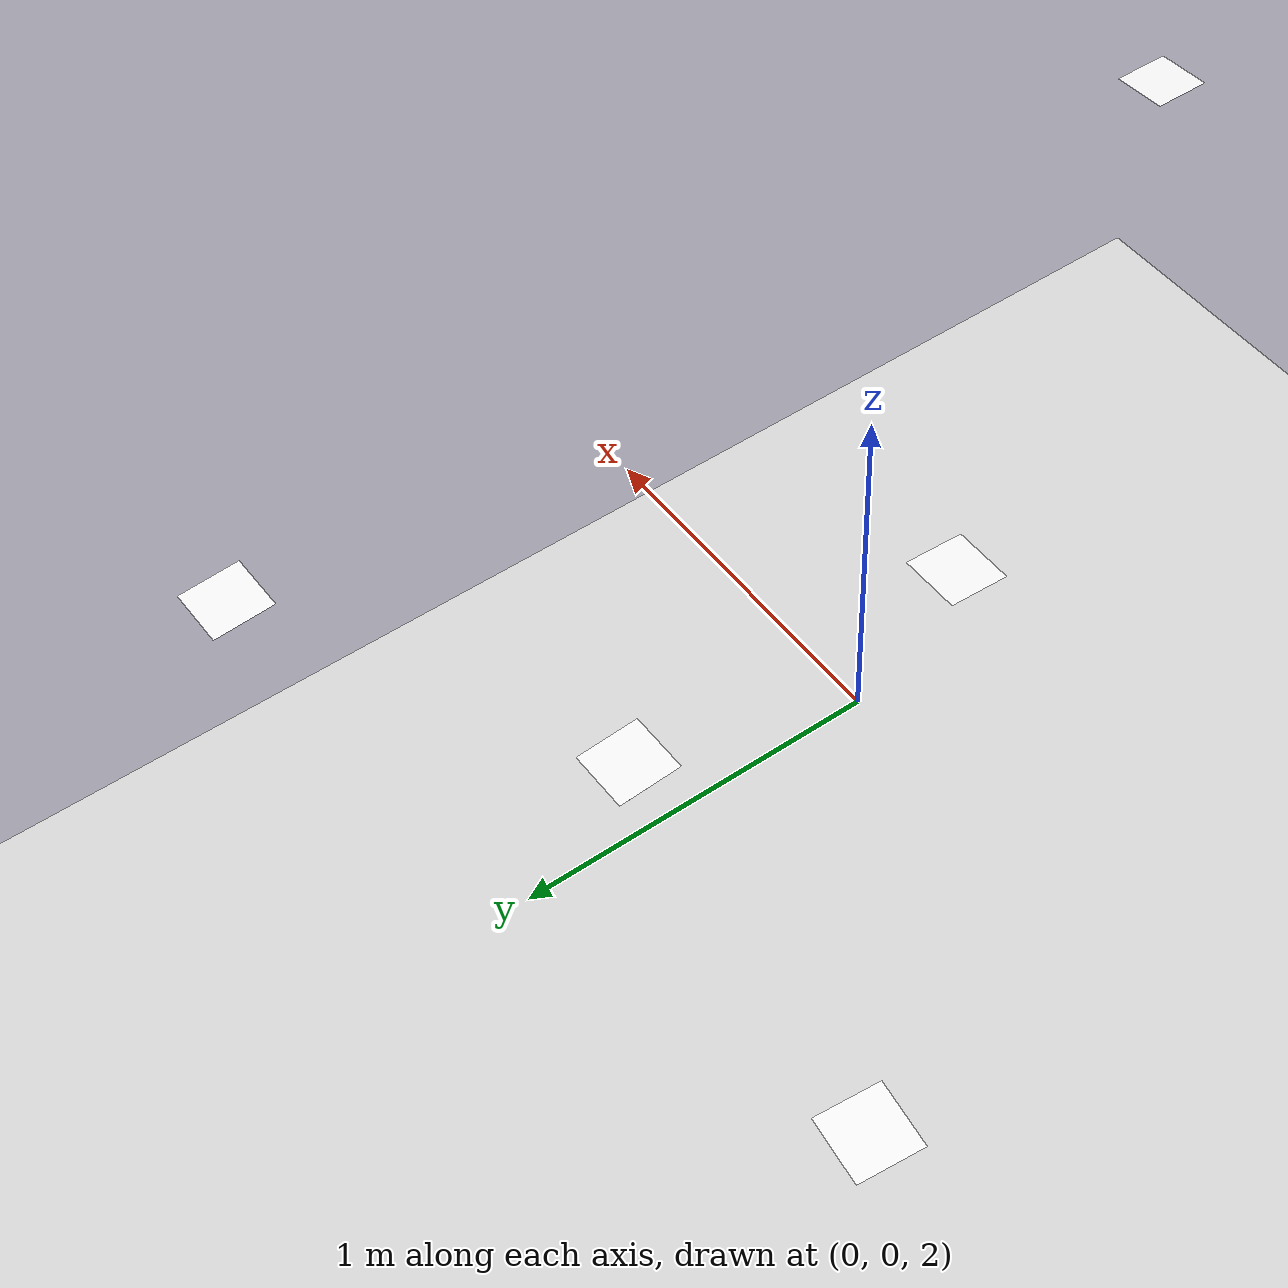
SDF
<?xml version="1.0"?>

<sdf version="1.6">
  <world name="default">

    <!-- Tweak to run at higher or lower speeds -->
    <physics name="normal" type="ode">
      <real_time_update_rate>1000</real_time_update_rate>
      <max_step_size>0.001</max_step_size>
    </physics>

    <!-- Ground plane -->
    <include>
      <uri>model://ground_plane</uri>
    </include>

    <!-- Lighting -->
    <include>
      <uri>model://sun</uri>
    </include>

    <!-- ArUco markers -->
    <model name="marker0">
      <include>
        <static>true</static>
        <uri>model://aruco_visual_marker_0</uri>
      </include>
      <pose>0 -1.6 1.5 -1.57 -1.57 0</pose>
    </model>
    <model name="marker1">
      <include>
        <static>true</static>
        <uri>model://aruco_visual_marker_1</uri>
      </include>
      <pose>0.5 2.5 1.5 0 -1.57 1.57</pose>
    </model>
    <model name="marker2">
      <include>
        <static>true</static>
        <uri>model://aruco_visual_marker_2</uri>
      </include>
      <pose>-2.5 0 1.5 0 -1.57 3.04</pose>
    </model>
    <model name="marker3">
      <include>
        <static>true</static>
        <uri>model://aruco_visual_marker_3</uri>
      </include>
      <pose>-1.5 2 1.5 0 -1.57 1.57</pose>
    </model>
    <model name="marker4">
      <include>
        <static>true</static>
        <uri>model://aruco_visual_marker_4</uri>
      </include>
      <pose>2.4 0 1.5 0 -1.57 0</pose>
    </model>
  </world>
</sdf>

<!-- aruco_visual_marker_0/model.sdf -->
<sdf version='1.5'>
  <model name='aruco_visual_marker_0'>

    <link name='marker'>
      <pose frame=''>0.8 0 1.3 0 -1.5 0</pose>
      <visual name='visual'>
        <geometry>
          <box>
            <size>0.1778 0.1778 1e-5</size>
          </box>
        </geometry>
        <material>
          <script>
            <uri>model://aruco_visual_marker_0/materials/scripts</uri>
            <uri>model://aruco_visual_marker_0/materials/textures</uri>
            <name>ArucoVisualMarker0/Marker</name>
          </script>
          <ambient>1 1 1 1</ambient>
          <diffuse>1 1 1 1</diffuse>
          <specular>0 0 0 1</specular>
          <emissive>1 1 1 0</emissive>
          <shader type='vertex'>
            <normal_map>__default__</normal_map>
          </shader>
        </material>
        <pose frame=''>0 0 0 0 -0 0</pose>
        <cast_shadows>1</cast_shadows>
        <transparency>0</transparency>
      </visual>
      <collision name='collision'>
        <laser_retro>0</laser_retro>
        <max_contacts>10</max_contacts>
        <pose frame=''>0 0 0 0 -0 0</pose>
        <geometry>
          <box>
            <size>0.1778 0.1778 1e-05</size>
          </box>
        </geometry>
      </collision>
    </link>

    <link name='marker_pad'>
      <pose frame='marker'>0 0 -1e-5 0 -0 0</pose>
      <visual name='visual'>
        <geometry>
          <box>
            <size>0.1778 0.1778 1e-5</size>
          </box>
        </geometry>
        <material>
          <lighting>1</lighting>
          <script>
            <uri>file://media/materials/scripts/gazebo.material</uri>
            <name>Gazebo/White</name>
          </script>
          <ambient>0.3 0.3 0.3 1</ambient>
          <diffuse>0.7 0.7 0.7 1</diffuse>
          <specular>0.01 0.01 0.01 1</specular>
          <emissive>1 1 1 0</emissive>
          <shader type='vertex'>
            <normal_map>__default__</normal_map>
          </shader>
        </material>
        <cast_shadows>1</cast_shadows>
        <transparency>0</transparency>
      </visual>
      <collision name='collision'>
        <laser_retro>0</laser_retro>
        <max_contacts>10</max_contacts>
        <pose frame=''>0 0 0 0 -0 0</pose>
        <geometry>
          <box>
            <size>0.1778 0.1778 1e-5</size>
          </box>
        </geometry>
      </collision>
    </link>

    <joint name='marker_JOINT_marker_pad' type='revolute'>
      <parent>marker</parent>
      <child>marker_pad</child>
      <pose frame=''>0 0 0 0 -0 0</pose>
      <axis>
        <xyz>0 0 1</xyz>
        <limit>
          <upper>0</upper>
          <lower>0</lower>
        </limit>
      </axis>
    </joint>

    <static>1</static>
    <allow_auto_disable>1</allow_auto_disable>

  </model>
</sdf>

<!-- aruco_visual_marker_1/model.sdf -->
<sdf version='1.5'>
  <model name='aruco_visual_marker_1'>

    <link name='marker'>
      <pose frame=''>0.8 -0.5 1.3 0 -1.5 0</pose>
      <visual name='visual'>
        <geometry>
          <box>
            <size>0.1778 0.1778 1e-5</size>
          </box>
        </geometry>
        <material>
          <script>
            <uri>model://aruco_visual_marker_1/materials/scripts</uri>
            <uri>model://aruco_visual_marker_1/materials/textures</uri>
            <name>ArucoVisualMarker1/Marker</name>
          </script>
          <ambient>1 1 1 1</ambient>
          <diffuse>1 1 1 1</diffuse>
          <specular>0 0 0 1</specular>
          <emissive>1 1 1 0</emissive>
          <shader type='vertex'>
            <normal_map>__default__</normal_map>
          </shader>
        </material>
        <pose frame=''>0 0 0 0 -0 0</pose>
        <cast_shadows>1</cast_shadows>
        <transparency>0</transparency>
      </visual>
      <collision name='collision'>
        <laser_retro>0</laser_retro>
        <max_contacts>10</max_contacts>
        <pose frame=''>0 0 0 0 -0 0</pose>
        <geometry>
          <box>
            <size>0.1778 0.1778 1e-05</size>
          </box>
        </geometry>
      </collision>
    </link>

    <link name='marker_pad'>
      <pose frame='marker'>0 0 -1e-5 0 -0 0</pose>
      <visual name='visual'>
        <geometry>
          <box>
            <size>0.1778 0.1778 1e-5</size>
          </box>
        </geometry>
        <material>
          <lighting>1</lighting>
          <script>
            <uri>file://media/materials/scripts/gazebo.material</uri>
            <name>Gazebo/White</name>
          </script>
          <ambient>0.3 0.3 0.3 1</ambient>
          <diffuse>0.7 0.7 0.7 1</diffuse>
          <specular>0.01 0.01 0.01 1</specular>
          <emissive>1 1 1 0</emissive>
          <shader type='vertex'>
            <normal_map>__default__</normal_map>
          </shader>
        </material>
        <cast_shadows>1</cast_shadows>
        <transparency>0</transparency>
      </visual>
      <collision name='collision'>
        <laser_retro>0</laser_retro>
        <max_contacts>10</max_contacts>
        <pose frame=''>0 0 0 0 -0 0</pose>
        <geometry>
          <box>
            <size>0.1778 0.1778 1e-5</size>
          </box>
        </geometry>
      </collision>
    </link>

    <joint name='marker_JOINT_marker_pad' type='revolute'>
      <parent>marker</parent>
      <child>marker_pad</child>
      <pose frame=''>0 0 0 0 -0 0</pose>
      <axis>
        <xyz>0 0 1</xyz>
        <limit>
          <upper>0</upper>
          <lower>0</lower>
        </limit>
      </axis>
    </joint>

    <static>1</static>
    <allow_auto_disable>1</allow_auto_disable>

  </model>
</sdf>

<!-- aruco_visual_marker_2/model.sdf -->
<sdf version='1.5'>
  <model name='aruco_visual_marker_2'>

    <link name='marker'>
      <pose frame=''>0.8 -1 1.3 0 -1.5 0</pose>
      <visual name='visual'>
        <geometry>
          <box>
            <size>0.1778 0.1778 1e-5</size>
          </box>
        </geometry>
        <material>
          <script>
            <uri>model://aruco_visual_marker_2/materials/scripts</uri>
            <uri>model://aruco_visual_marker_2/materials/textures</uri>
            <name>ArucoVisualMarker2/Marker</name>
          </script>
          <ambient>1 1 1 1</ambient>
          <diffuse>1 1 1 1</diffuse>
          <specular>0 0 0 1</specular>
          <emissive>1 1 1 0</emissive>
          <shader type='vertex'>
            <normal_map>__default__</normal_map>
          </shader>
        </material>
        <pose frame=''>0 0 0 0 -0 0</pose>
        <cast_shadows>1</cast_shadows>
        <transparency>0</transparency>
      </visual>
      <collision name='collision'>
        <laser_retro>0</laser_retro>
        <max_contacts>10</max_contacts>
        <pose frame=''>0 0 0 0 -0 0</pose>
        <geometry>
          <box>
            <size>0.1778 0.1778 1e-05</size>
          </box>
        </geometry>
      </collision>
    </link>

    <link name='marker_pad'>
      <pose frame='marker'>0 0 -1e-5 0 -0 0</pose>
      <visual name='visual'>
        <geometry>
          <box>
            <size>0.1778 0.1778 1e-5</size>
          </box>
        </geometry>
        <material>
          <lighting>1</lighting>
          <script>
            <uri>file://media/materials/scripts/gazebo.material</uri>
            <name>Gazebo/White</name>
          </script>
          <ambient>0.3 0.3 0.3 1</ambient>
          <diffuse>0.7 0.7 0.7 1</diffuse>
          <specular>0.01 0.01 0.01 1</specular>
          <emissive>1 1 1 0</emissive>
          <shader type='vertex'>
            <normal_map>__default__</normal_map>
          </shader>
        </material>
        <cast_shadows>1</cast_shadows>
        <transparency>0</transparency>
      </visual>
      <collision name='collision'>
        <laser_retro>0</laser_retro>
        <max_contacts>10</max_contacts>
        <pose frame=''>0 0 0 0 -0 0</pose>
        <geometry>
          <box>
            <size>0.1778 0.1778 1e-5</size>
          </box>
        </geometry>
      </collision>
    </link>

    <joint name='marker_JOINT_marker_pad' type='revolute'>
      <parent>marker</parent>
      <child>marker_pad</child>
      <pose frame=''>0 0 0 0 -0 0</pose>
      <axis>
        <xyz>0 0 1</xyz>
        <limit>
          <upper>0</upper>
          <lower>0</lower>
        </limit>
      </axis>
    </joint>

    <static>1</static>
    <allow_auto_disable>1</allow_auto_disable>

  </model>
</sdf>

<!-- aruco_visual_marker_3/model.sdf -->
<sdf version='1.5'>
  <model name='aruco_visual_marker_3'>

    <link name='marker'>
      <pose frame=''>0.8 -1.5 1.3 0 -1.5 0</pose>
      <visual name='visual'>
        <geometry>
          <box>
            <size>0.1778 0.1778 1e-5</size>
          </box>
        </geometry>
        <material>
          <script>
            <uri>model://aruco_visual_marker_3/materials/scripts</uri>
            <uri>model://aruco_visual_marker_3/materials/textures</uri>
            <name>ArucoVisualMarker3/Marker</name>
          </script>
          <ambient>1 1 1 1</ambient>
          <diffuse>1 1 1 1</diffuse>
          <specular>0 0 0 1</specular>
          <emissive>1 1 1 0</emissive>
          <shader type='vertex'>
            <normal_map>__default__</normal_map>
          </shader>
        </material>
        <pose frame=''>0 0 0 0 -0 0</pose>
        <cast_shadows>1</cast_shadows>
        <transparency>0</transparency>
      </visual>
      <collision name='collision'>
        <laser_retro>0</laser_retro>
        <max_contacts>10</max_contacts>
        <pose frame=''>0 0 0 0 -0 0</pose>
        <geometry>
          <box>
            <size>0.1778 0.1778 1e-05</size>
          </box>
        </geometry>
      </collision>
    </link>

    <link name='marker_pad'>
      <pose frame='marker'>0 0 -1e-5 0 -0 0</pose>
      <visual name='visual'>
        <geometry>
          <box>
            <size>0.1778 0.1778 1e-5</size>
          </box>
        </geometry>
        <material>
          <lighting>1</lighting>
          <script>
            <uri>file://media/materials/scripts/gazebo.material</uri>
            <name>Gazebo/White</name>
          </script>
          <ambient>0.3 0.3 0.3 1</ambient>
          <diffuse>0.7 0.7 0.7 1</diffuse>
          <specular>0.01 0.01 0.01 1</specular>
          <emissive>1 1 1 0</emissive>
          <shader type='vertex'>
            <normal_map>__default__</normal_map>
          </shader>
        </material>
        <cast_shadows>1</cast_shadows>
        <transparency>0</transparency>
      </visual>
      <collision name='collision'>
        <laser_retro>0</laser_retro>
        <max_contacts>10</max_contacts>
        <pose frame=''>0 0 0 0 -0 0</pose>
        <geometry>
          <box>
            <size>0.1778 0.1778 1e-5</size>
          </box>
        </geometry>
      </collision>
    </link>

    <joint name='marker_JOINT_marker_pad' type='revolute'>
      <parent>marker</parent>
      <child>marker_pad</child>
      <pose frame=''>0 0 0 0 -0 0</pose>
      <axis>
        <xyz>0 0 1</xyz>
        <limit>
          <upper>0</upper>
          <lower>0</lower>
        </limit>
      </axis>
    </joint>

    <static>1</static>
    <allow_auto_disable>1</allow_auto_disable>

  </model>
</sdf>

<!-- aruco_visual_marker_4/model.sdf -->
<sdf version='1.5'>
  <model name='aruco_visual_marker_4'>

    <link name='marker'>
      <pose frame=''>0.8 -2 1.3 0 -1.5 0</pose>
      <visual name='visual'>
        <geometry>
          <box>
            <size>0.1778 0.1778 1e-5</size>
          </box>
        </geometry>
        <material>
          <script>
            <uri>model://aruco_visual_marker_4/materials/scripts</uri>
            <uri>model://aruco_visual_marker_4/materials/textures</uri>
            <name>ArucoVisualMarker4/Marker</name>
          </script>
          <ambient>1 1 1 1</ambient>
          <diffuse>1 1 1 1</diffuse>
          <specular>0 0 0 1</specular>
          <emissive>1 1 1 0</emissive>
          <shader type='vertex'>
            <normal_map>__default__</normal_map>
          </shader>
        </material>
        <pose frame=''>0 0 0 0 -0 0</pose>
        <cast_shadows>1</cast_shadows>
        <transparency>0</transparency>
      </visual>
      <collision name='collision'>
        <laser_retro>0</laser_retro>
        <max_contacts>10</max_contacts>
        <pose frame=''>0 0 0 0 -0 0</pose>
        <geometry>
          <box>
            <size>0.1778 0.1778 1e-05</size>
          </box>
        </geometry>
      </collision>
    </link>

    <link name='marker_pad'>
      <pose frame='marker'>0 0 -1e-5 0 -0 0</pose>
      <visual name='visual'>
        <geometry>
          <box>
            <size>0.1778 0.1778 1e-5</size>
          </box>
        </geometry>
        <material>
          <lighting>1</lighting>
          <script>
            <uri>file://media/materials/scripts/gazebo.material</uri>
            <name>Gazebo/White</name>
          </script>
          <ambient>0.3 0.3 0.3 1</ambient>
          <diffuse>0.7 0.7 0.7 1</diffuse>
          <specular>0.01 0.01 0.01 1</specular>
          <emissive>1 1 1 0</emissive>
          <shader type='vertex'>
            <normal_map>__default__</normal_map>
          </shader>
        </material>
        <cast_shadows>1</cast_shadows>
        <transparency>0</transparency>
      </visual>
      <collision name='collision'>
        <laser_retro>0</laser_retro>
        <max_contacts>10</max_contacts>
        <pose frame=''>0 0 0 0 -0 0</pose>
        <geometry>
          <box>
            <size>0.1778 0.1778 1e-5</size>
          </box>
        </geometry>
      </collision>
    </link>

    <joint name='marker_JOINT_marker_pad' type='revolute'>
      <parent>marker</parent>
      <child>marker_pad</child>
      <pose frame=''>0 0 0 0 -0 0</pose>
      <axis>
        <xyz>0 0 1</xyz>
        <limit>
          <upper>0</upper>
          <lower>0</lower>
        </limit>
      </axis>
    </joint>

    <static>1</static>
    <allow_auto_disable>1</allow_auto_disable>

  </model>
</sdf>
